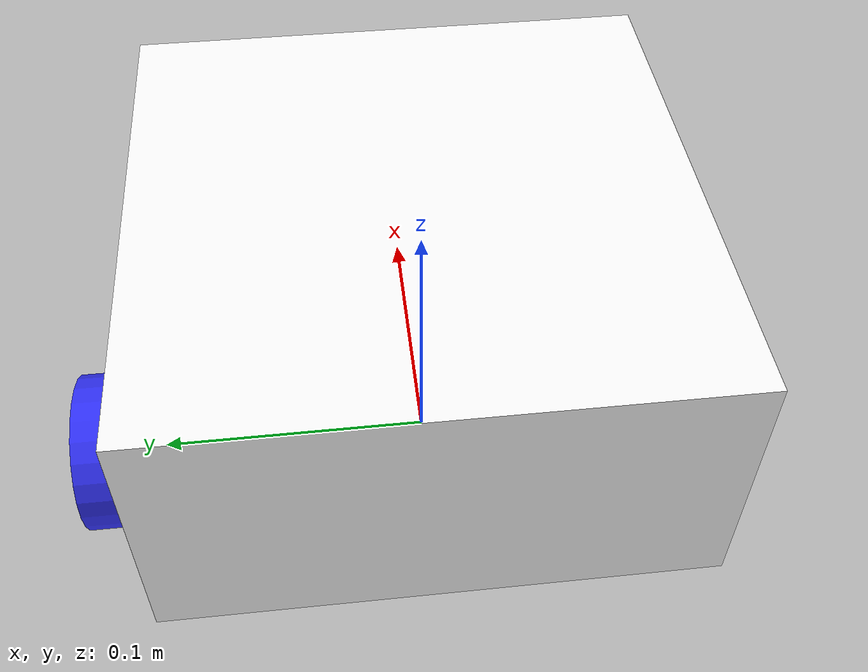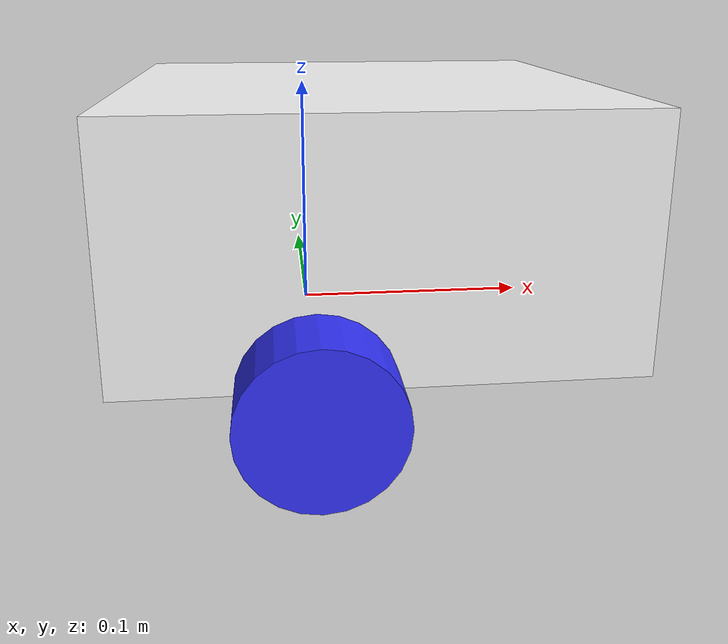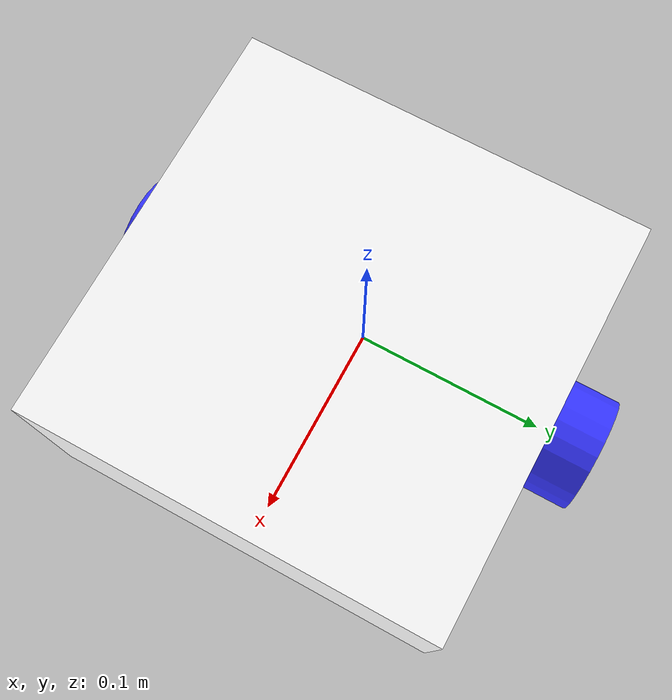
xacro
<?xml version="1.0"?>
<robot xmlns:xacro="http://www.ros.org/wiki/xacro">

  <xacro:include filename="inertial_macros.xacro"/>

  <material name="white">
    <color rgba="1 1 1 1" />
  </material>

  <material name="black">
    <color rgba="0 0 0 1" />
  </material>

  <material name="blue">
    <color rgba="0.2 0.2 1 1" />
  </material>

  <material name="red">
    <color rgba="1 0.2 0.2 1" />
  </material>

  <!-- BASE LINK -->

  <link name="base_link">

  </link>

  <!-- BASE FOOTPRINT LINK -->

  <joint name="base_footprint_joint" type="fixed">
    <parent link="base_link"/>
    <child link="base_footprint"/>
    <origin xyz="0 0 0" rpy="0 0 0"/>
  </joint>

  <link name="base_footprint">

  </link>

  <!-- CHASSIS LINK -->

  <joint name="chassis_joint" type="fixed">
    <parent link="base_link"/>
    <child link="chassis"/>
    <origin xyz="-0.075 0 0"/>
  </joint>

  <link name="chassis">
    <visual>
      <origin xyz="0.1 0 0.05"/>
      <geometry>
        <box size="0.2 0.2 0.1"/>
      </geometry>
      <material name="white"/>
    </visual>
    <collision>
      <origin xyz="0.1 0 0.05"/>
      <geometry>
        <box size="0.2 0.2 0.1"/>
      </geometry>
    </collision>
    <xacro:inertial_box mass="1.0" x="0.2" y="0.2" z="0.1">
      <origin xyz="0.1 0 0.05" rpy="0 0 0"/>
    </xacro:inertial_box>
  </link>

  <gazebo reference="chassis">
  </gazebo>

  <!-- LEFT WHEEL LINK -->

  <joint name="left_wheel_joint" type="continuous">
    <parent link="base_link"/>
    <child link="left_wheel"/>
    <origin xyz="0 0.115 0" rpy="-${pi/2} 0 0"/>
    <axis xyz="0 0 1"/>
  </joint>

  <link name="left_wheel">
    <visual>
      <geometry>
        <cylinder radius="0.03" length="0.03"/>
      </geometry>
      <material name="blue"/>
    </visual>
    <collision>
      <geometry>
        <cylinder radius="0.03" length="0.03"/>
      </geometry>
    </collision>
    <xacro:inertial_cylinder mass="0.1" length="0.03" radius="0.03">
      <origin xyz="0 0 0" rpy="0 0 0"/>
    </xacro:inertial_cylinder>
  </link>

  <gazebo reference="left_wheel">
    <material>Gazebo/Blue</material>
  </gazebo>

  <!-- RIGHT WHEEL LINK -->

  <joint name="right_wheel_joint" type="continuous">
    <parent link="base_link"/>
    <child link="right_wheel"/>
    <origin xyz="0 -0.115 0" rpy="${pi/2} 0 0"/>
    <axis xyz="0 0 -1"/>
  </joint>

  <link name="right_wheel">
    <visual>
      <geometry>
        <cylinder radius="0.03" length="0.03"/>
      </geometry>
      <material name="blue"/>
    </visual>
    <collision>
      <geometry>
        <cylinder radius="0.03" length="0.03"/>
      </geometry>
    </collision>
    <xacro:inertial_cylinder mass="0.1" length="0.03" radius="0.03">
      <origin xyz="0 0 0" rpy="0 0 0"/>
    </xacro:inertial_cylinder>
  </link>

  <gazebo reference="right_wheel">
    <material>Gazebo/Blue</material>
  </gazebo>

  <!-- CASTER WHEEL LINK -->

  <joint name="caster_wheel_joint" type="fixed">
    <parent link="chassis"/>
    <child link="caster_wheel"/>
    <origin xyz="0.16 0 0"/>
  </joint>

  <link name="caster_wheel">
    <visual>
      <geometry>
        <sphere radius="0.03"/>
      </geometry>
      <material name="red"/>
    </visual>
    <collision>
      <geometry>
        <sphere radius="0.03"/>
      </geometry>
    </collision>
    <xacro:inertial_sphere mass="0.2" radius="0.03">
      <origin xyz="0 0 0" rpy="0 0 0"/>
    </xacro:inertial_sphere>
  </link>

  <gazebo reference="caster_wheel">
    <material>Gazebo/Red</material>
    <mu1 value="0.001" />
    <mu2 value="0.001" />
  </gazebo>

</robot>
